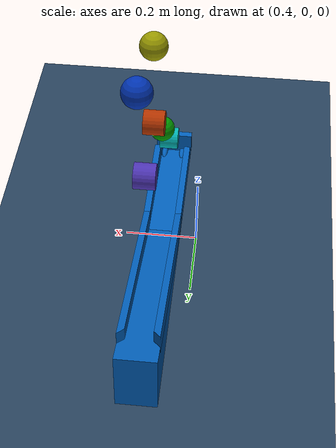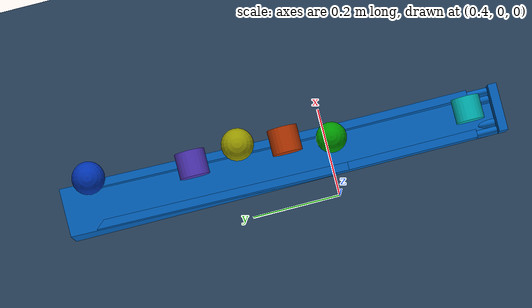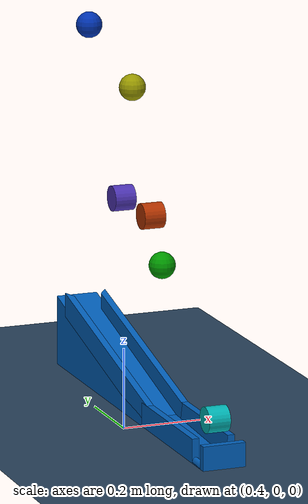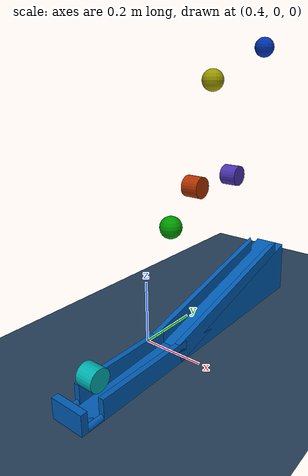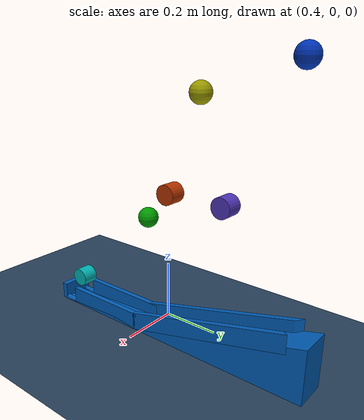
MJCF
<?xml version='1.0' encoding='utf-8'?>
<mujoco model="slope scene">
  <option cone="elliptic" impratio="200" integrator="implicitfast"/>

  <compiler angle="radian" meshdir="../" />
  <statistic center="0.3 0 0.4" extent="1" />

  <visual>
    <headlight diffuse="0.6 0.6 0.6" ambient="0.3 0.3 0.3" specular="0 0 0" />
    <rgba haze="0.15 0.25 0.35 1" />
    <global azimuth="120" elevation="-20" />
  </visual>

  <asset>
    <texture type="skybox" builtin="gradient" rgb1="0.3 0.5 0.7" rgb2="0 0 0" width="512" height="3072" />
    <texture type="2d" name="groundplane" builtin="checker" mark="edge" rgb1="0.2 0.3 0.4" rgb2="0.1 0.2 0.3" markrgb="0.8 0.8 0.8" width="300" height="300" />
    <material name="groundplane" texture="groundplane" texuniform="true" texrepeat="5 5" reflectance="0.2" />
  </asset>

  <worldbody>
    <light pos="0 0 1.5" dir="0 0 -1" directional="true" />
    <geom name="floor" size="0 0 0.05" type="plane" material="groundplane" />
  </worldbody>

  <asset>
    <mesh file="demo/assets/bottom_fence_left.stl" scale="0.018 0.02 0.02"/>
    <mesh file="demo/assets/bottom_fence_right.stl" scale="0.018 0.02 0.02"/>
    <mesh file="demo/assets/top_fence_left.stl" scale="0.018 0.02 0.02"/>
    <mesh file="demo/assets/top_fence_right.stl" scale="0.018 0.02 0.02"/>
    <mesh file="demo/assets/stopper.stl" scale="0.018 0.02 0.02"/>
    <mesh file="demo/assets/top_slope.stl" scale="0.018 0.02 0.02"/>
    <mesh file="demo/assets/bottom_slope.stl" scale="0.018 0.02 0.02"/>
    <mesh file="demo/assets/stopper_left.stl" scale="0.018 0.02 0.015"/>
    <mesh file="demo/assets/stopper_right.stl" scale="0.018 0.02 0.015"/>

    <mesh file="demo/assets/bottom_support_left.stl" scale="0.018 0.02 0.02"/>
    <mesh file="demo/assets/bottom_support_right.stl" scale="0.018 0.02 0.02"/>
  </asset>

  <worldbody>
    <body name="ball1" pos="0.5 0.0 0.4">
      <freejoint/>
      <geom type="sphere" name="ball1" size="0.033" condim="3"
       friction="1 .03 .003" rgba="0 0.6 0 1" contype="1" conaffinity="1" solref="0.01 1" density="600"/>
    </body>
    <body name="ball2" pos="0.5 0.2 0.8">
      <freejoint/>
      <geom type="sphere" name="ball2" size="0.033" condim="3"
       friction="1 .03 .003" rgba="0.6 0.6 0 1" contype="1" conaffinity="1" solref="0.01 1" density="600"/>
    </body>
    <body name="ball3" pos="0.5 0.5 0.9">
      <freejoint/>
      <geom type="sphere" name="ball3" size="0.033" condim="3"
       friction="1 .03 .003" rgba="0.0 0.2 0.7 1" contype="1" conaffinity="1" solref="0.01 1" density="600"/>
    </body>
    <body name="cylinder1" pos="0.51 -0.32 0.1" euler="0 1.5708 0">
      <freejoint/>
      <geom type="cylinder" name="cylinder1" size="0.032 0.027 0.01" condim="3"
        rgba="0 0.7 0.7 1" contype="1" conaffinity="1" solref="0.01 1" density="500" friction="0.01 0.003 .0003"/>
    </body>
    <body name="cylinder2" pos="0.51 0.1 0.5" euler="0 1.5708 0">
      <freejoint/>
      <geom type="cylinder" name="cylinder2" size="0.032 0.027 0.01" condim="3"
        rgba="0.7 0.2 0 1" contype="1" conaffinity="1" solref="0.01 1" density="500" friction="0.01 0.003 .0003"/>
    </body>
    <body name="cylinder3" pos="0.51 0.3 0.5" euler="0 1.5708 0">
      <freejoint/>
      <geom type="cylinder" name="cylinder3" size="0.032 0.027 0.01" condim="3"
        rgba="0.3 0.2 0.7 1" contype="1" conaffinity="1" solref="0.01 1" density="500" friction="0.01 0.003 .0003"/>
    </body>

    <body name="bottom_fence_left" pos="0.177 0.0 0.0" euler="0 0 3.14159">
      <geom type="mesh" name="bottom_fence_left" mesh="bottom_fence_left" rgba="0 0.369 0.722 1" friction="0 0 0"/>
    </body>
    <body name="bottom_fence_right" pos="0.177 0.0 0.0" euler="0 0 3.14159">
      <geom type="mesh" name="bottom_fence_right" mesh="bottom_fence_right" rgba="0 0.369 0.722 1" friction="0 0 0"/>
    </body>
    <body name="top_fence_left" pos="0.177 0.0 0.0" euler="0 0 3.14159">
      <geom type="mesh" name="top_fence_left" mesh="top_fence_left" rgba="0 0.369 0.722 1" friction="0 0 0"/>
    </body>
    <body name="top_fence_right" pos="0.177 0.0 0.0" euler="0 0 3.14159">
      <geom type="mesh" name="top_fence_right" mesh="top_fence_right" rgba="0 0.369 0.722 1" friction="0 0 0"/>
    </body>
    <body name="stopper" pos="0.177 0.0 0.0" euler="0 0 3.14159">
      <geom type="mesh" name="stopper" mesh="stopper" rgba="0 0.369 0.722 1"/>
    </body>
    <body name="top_slope" pos="0.177 0.0 0.0" euler="0 0 3.14159">
      <geom type="mesh" name="top_slope" mesh="top_slope" rgba="0 0.369 0.722 1"/>
    </body>
    <body name="bottom_slope" pos="0.177 0.0 0.0" euler="0 0 3.14159">
      <geom type="mesh" name="bottom_slope" mesh="bottom_slope" rgba="0 0.369 0.722 1"/>
    </body>
    <body name="stopper_right" pos="0.177 0.0 0.0" euler="0 0 3.14159">
      <geom type="mesh" name="stopper_right" mesh="stopper_right" rgba="0 0.369 0.722 1"/>
    </body>
    <body name="stopper_left" pos="0.177 0.0 0.0" euler="0 0 3.14159">
      <geom type="mesh" name="stopper_left" mesh="stopper_left" rgba="0 0.369 0.722 1"/>
    </body>

    <body name="bottom_support_left" pos="0.177 0.0 0.0" euler="0 0 3.14159">
      <geom type="mesh" name="bottom_support_left" mesh="bottom_support_left" rgba="0 0.369 0.722 1"/>
    </body>
    <body name="bottom_support_right" pos="0.177 0.0 0.0" euler="0 0 3.14159">
      <geom type="mesh" name="bottom_support_right" mesh="bottom_support_right" rgba="0 0.369 0.722 1"/>
    </body>

  </worldbody>
</mujoco>
